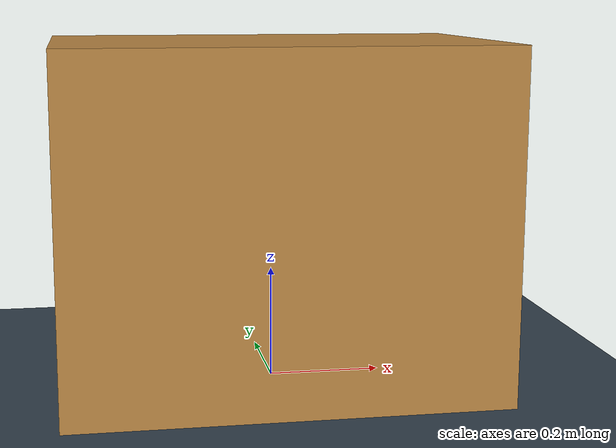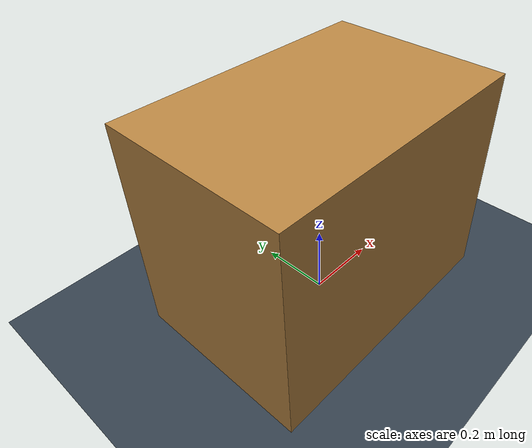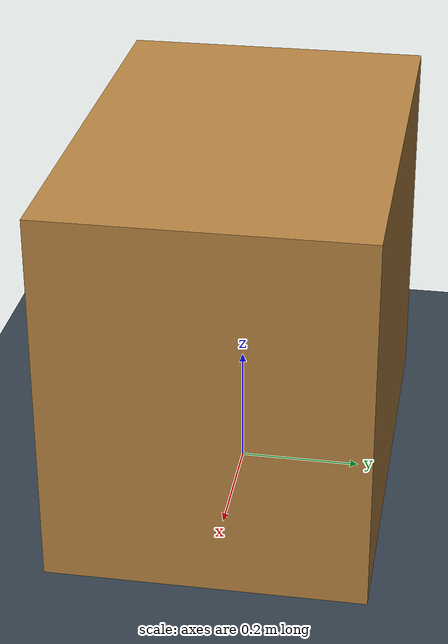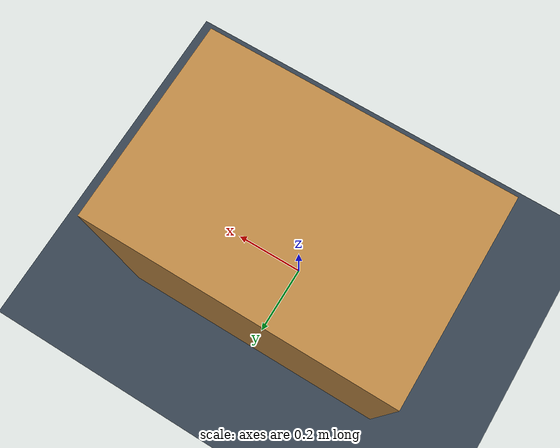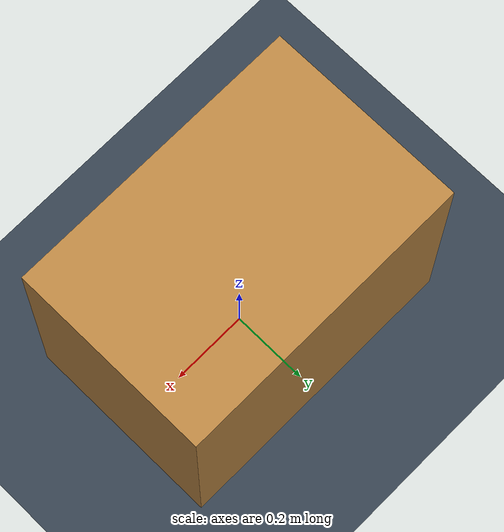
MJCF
<mujoco model="box_20x30x24in">

  <compiler angle="radian"/>

  <option timestep="0.01" gravity="0 0 -9.81"/>

  <asset>
    <texture type="skybox" builtin="gradient" rgb1="0.4 0.6 0.8" rgb2="0.1 0.2 0.3"
             width="512" height="512"/>
    <texture type="2d" name="groundplane" builtin="checker" mark="edge"
             rgb1="0.25 0.30 0.35" rgb2="0.15 0.20 0.25" markrgb="0.9 0.9 0.9"
             width="300" height="300"/>
    <material name="groundplane" texture="groundplane" texuniform="true"
              texrepeat="6 6" reflectance="0.15"/>
    <material name="box_wood" rgba="0.72 0.52 0.26 1" reflectance="0.05"/>
    <material name="box_edge" rgba="0.45 0.30 0.12 1"/>
  </asset>

  <worldbody>
    <light pos="2 1 4" dir="-1 -0.5 -2" directional="true" diffuse="0.8 0.8 0.8"/>
    <light pos="-1 -1 3" dir="0.5 0.5 -1" directional="true" diffuse="0.3 0.3 0.3"/>

    <!-- Floor -->
    <geom name="floor" size="0 0 0.05" type="plane" material="groundplane"
          contype="1" conaffinity="1"/>

    <!-- Platform box: 20 x 30 x 24 inches -->
    <geom name="platform" type="box"
          pos="0 0 0.3048"
          size="0.381 0.254 0.3048"
          material="box_wood"
          contype="1" conaffinity="1"
          friction="1.0 0.005 0.0001"/>
  </worldbody>

  <keyframe>
    <key name="default" qpos=""/>
  </keyframe>

</mujoco>
